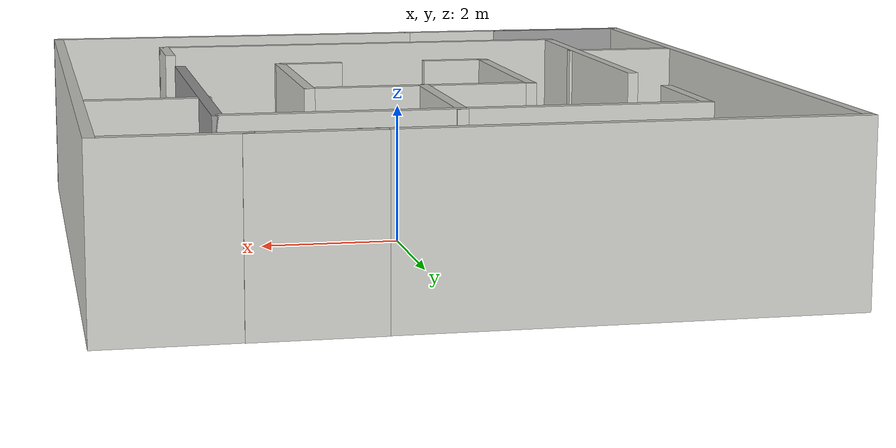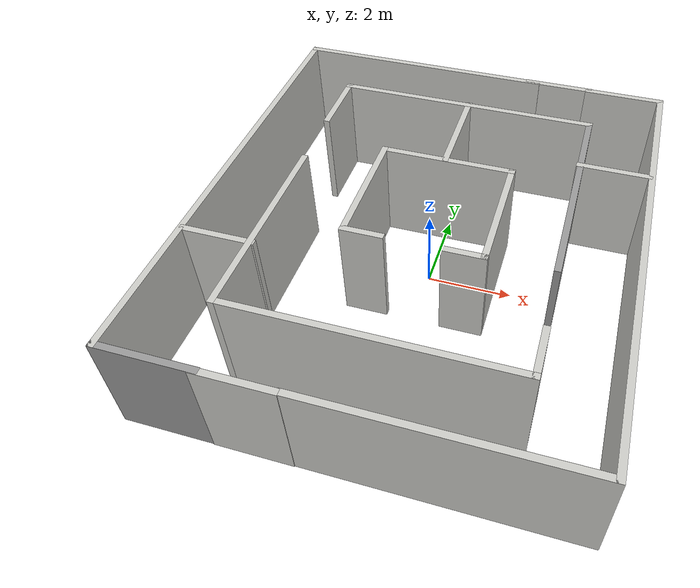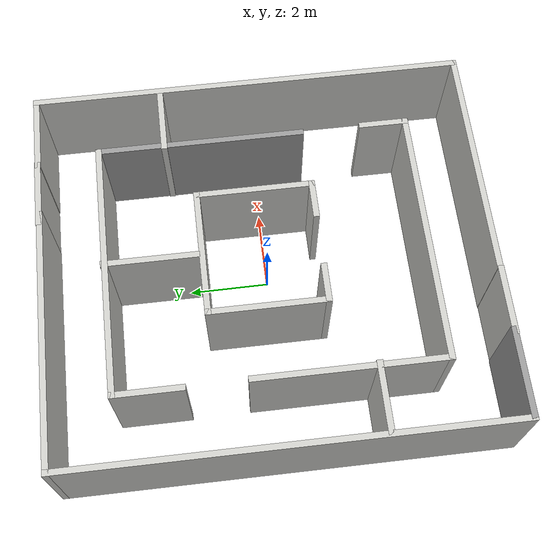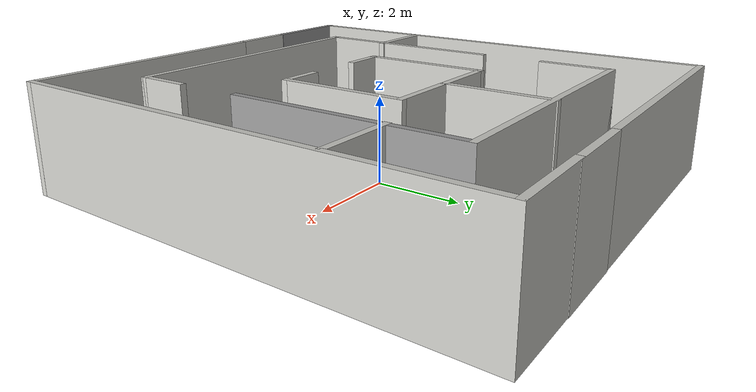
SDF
<?xml version='1.0'?>
<sdf version='1.7'>
  <model name='Maze'>
    <link name='Wall_13'>
      <pose>-1.73209 5.42018 0 0 -0 0</pose>
      <self_collide>0</self_collide>
      <enable_wind>0</enable_wind>
      <kinematic>0</kinematic>
      <visual name='Wall_13_Visual'>
        <pose>0 0 1.25 0 -0 0</pose>
        <geometry>
          <box>
            <size>6.5 0.15 2.5</size>
          </box>
        </geometry>
        <material>
          <script>
            <uri>file://media/materials/scripts/gazebo.material</uri>
            <name>Gazebo/CeilingTiled</name>
          </script>
          <ambient>1 1 1 1</ambient>
          <shader type='pixel'/>
        </material>
        <meta>
          <layer>0</layer>
        </meta>
        <transparency>0</transparency>
        <cast_shadows>1</cast_shadows>
      </visual>
      <collision name='Wall_13_Collision'>
        <laser_retro>0</laser_retro>
        <max_contacts>10</max_contacts>
        <pose>0 0 1.25 0 -0 0</pose>
        <geometry>
          <box>
            <size>6.5 0.15 2.5</size>
          </box>
        </geometry>
        <surface>
          <friction>
            <ode>
              <mu>1</mu>
              <mu2>1</mu2>
              <fdir1>0 0 0</fdir1>
              <slip1>0</slip1>
              <slip2>0</slip2>
            </ode>
            <torsional>
              <coefficient>1</coefficient>
              <patch_radius>0</patch_radius>
              <surface_radius>0</surface_radius>
              <use_patch_radius>1</use_patch_radius>
              <ode>
                <slip>0</slip>
              </ode>
            </torsional>
          </friction>
          <bounce>
            <restitution_coefficient>0</restitution_coefficient>
            <threshold>1e+06</threshold>
          </bounce>
          <contact>
            <collide_without_contact>0</collide_without_contact>
            <collide_without_contact_bitmask>1</collide_without_contact_bitmask>
            <collide_bitmask>1</collide_bitmask>
            <ode>
              <soft_cfm>0</soft_cfm>
              <soft_erp>0.2</soft_erp>
              <kp>1e+13</kp>
              <kd>1</kd>
              <max_vel>0.01</max_vel>
              <min_depth>0</min_depth>
            </ode>
            <bullet>
              <split_impulse>1</split_impulse>
              <split_impulse_penetration_threshold>-0.01</split_impulse_penetration_threshold>
              <soft_cfm>0</soft_cfm>
              <soft_erp>0.2</soft_erp>
              <kp>1e+13</kp>
              <kd>1</kd>
            </bullet>
          </contact>
        </surface>
      </collision>
    </link>
    <link name='Wall_15'>
      <pose>-4.90709 -0.004825 0 0 0 -1.5708</pose>
      <self_collide>0</self_collide>
      <enable_wind>0</enable_wind>
      <kinematic>0</kinematic>
      <visual name='Wall_15_Visual'>
        <pose>0 0 1.25 0 -0 0</pose>
        <geometry>
          <box>
            <size>11 0.15 2.5</size>
          </box>
        </geometry>
        <material>
          <script>
            <uri>file://media/materials/scripts/gazebo.material</uri>
            <name>Gazebo/CeilingTiled</name>
          </script>
          <ambient>1 1 1 1</ambient>
          <shader type='pixel'/>
        </material>
        <meta>
          <layer>0</layer>
        </meta>
        <transparency>0</transparency>
        <cast_shadows>1</cast_shadows>
      </visual>
      <collision name='Wall_15_Collision'>
        <laser_retro>0</laser_retro>
        <max_contacts>10</max_contacts>
        <pose>0 0 1.25 0 -0 0</pose>
        <geometry>
          <box>
            <size>11 0.15 2.5</size>
          </box>
        </geometry>
        <surface>
          <friction>
            <ode>
              <mu>1</mu>
              <mu2>1</mu2>
              <fdir1>0 0 0</fdir1>
              <slip1>0</slip1>
              <slip2>0</slip2>
            </ode>
            <torsional>
              <coefficient>1</coefficient>
              <patch_radius>0</patch_radius>
              <surface_radius>0</surface_radius>
              <use_patch_radius>1</use_patch_radius>
              <ode>
                <slip>0</slip>
              </ode>
            </torsional>
          </friction>
          <bounce>
            <restitution_coefficient>0</restitution_coefficient>
            <threshold>1e+06</threshold>
          </bounce>
          <contact>
            <collide_without_contact>0</collide_without_contact>
            <collide_without_contact_bitmask>1</collide_without_contact_bitmask>
            <collide_bitmask>1</collide_bitmask>
            <ode>
              <soft_cfm>0</soft_cfm>
              <soft_erp>0.2</soft_erp>
              <kp>1e+13</kp>
              <kd>1</kd>
              <max_vel>0.01</max_vel>
              <min_depth>0</min_depth>
            </ode>
            <bullet>
              <split_impulse>1</split_impulse>
              <split_impulse_penetration_threshold>-0.01</split_impulse_penetration_threshold>
              <soft_cfm>0</soft_cfm>
              <soft_erp>0.2</soft_erp>
              <kp>1e+13</kp>
              <kd>1</kd>
            </bullet>
          </contact>
        </surface>
      </collision>
    </link>
    <link name='Wall_16'>
      <pose>-3.85709 -5.42983 0 0 -0 0</pose>
      <self_collide>0</self_collide>
      <enable_wind>0</enable_wind>
      <kinematic>0</kinematic>
      <visual name='Wall_16_Visual'>
        <pose>0 0 1.25 0 -0 0</pose>
        <geometry>
          <box>
            <size>2.25 0.15 2.5</size>
          </box>
        </geometry>
        <material>
          <script>
            <uri>file://media/materials/scripts/gazebo.material</uri>
            <name>Gazebo/Grey</name>
          </script>
          <ambient>1 1 1 1</ambient>
          <shader type='pixel'/>
        </material>
        <meta>
          <layer>0</layer>
        </meta>
        <transparency>0</transparency>
        <cast_shadows>1</cast_shadows>
      </visual>
      <collision name='Wall_16_Collision'>
        <laser_retro>0</laser_retro>
        <max_contacts>10</max_contacts>
        <pose>0 0 1.25 0 -0 0</pose>
        <geometry>
          <box>
            <size>2.25 0.15 2.5</size>
          </box>
        </geometry>
        <surface>
          <friction>
            <ode>
              <mu>1</mu>
              <mu2>1</mu2>
              <fdir1>0 0 0</fdir1>
              <slip1>0</slip1>
              <slip2>0</slip2>
            </ode>
            <torsional>
              <coefficient>1</coefficient>
              <patch_radius>0</patch_radius>
              <surface_radius>0</surface_radius>
              <use_patch_radius>1</use_patch_radius>
              <ode>
                <slip>0</slip>
              </ode>
            </torsional>
          </friction>
          <bounce>
            <restitution_coefficient>0</restitution_coefficient>
            <threshold>1e+06</threshold>
          </bounce>
          <contact>
            <collide_without_contact>0</collide_without_contact>
            <collide_without_contact_bitmask>1</collide_without_contact_bitmask>
            <collide_bitmask>1</collide_bitmask>
            <ode>
              <soft_cfm>0</soft_cfm>
              <soft_erp>0.2</soft_erp>
              <kp>1e+13</kp>
              <kd>1</kd>
              <max_vel>0.01</max_vel>
              <min_depth>0</min_depth>
            </ode>
            <bullet>
              <split_impulse>1</split_impulse>
              <split_impulse_penetration_threshold>-0.01</split_impulse_penetration_threshold>
              <soft_cfm>0</soft_cfm>
              <soft_erp>0.2</soft_erp>
              <kp>1e+13</kp>
              <kd>1</kd>
            </bullet>
          </contact>
        </surface>
      </collision>
    </link>
    <link name='Wall_20'>
      <pose>3.74088 5.42018 0 0 -0 0</pose>
      <self_collide>0</self_collide>
      <enable_wind>0</enable_wind>
      <kinematic>0</kinematic>
      <visual name='Wall_20_Visual'>
        <pose>0 0 1.25 0 -0 0</pose>
        <geometry>
          <box>
            <size>2 0.15 2.5</size>
          </box>
        </geometry>
        <material>
          <script>
            <uri>file://media/materials/scripts/gazebo.material</uri>
            <name>Gazebo/CeilingTiled</name>
          </script>
          <ambient>1 1 1 1</ambient>
          <shader type='pixel'/>
        </material>
        <meta>
          <layer>0</layer>
        </meta>
        <transparency>0</transparency>
        <cast_shadows>1</cast_shadows>
      </visual>
      <collision name='Wall_20_Collision'>
        <laser_retro>0</laser_retro>
        <max_contacts>10</max_contacts>
        <pose>0 0 1.25 0 -0 0</pose>
        <geometry>
          <box>
            <size>2 0.15 2.5</size>
          </box>
        </geometry>
        <surface>
          <friction>
            <ode>
              <mu>1</mu>
              <mu2>1</mu2>
              <fdir1>0 0 0</fdir1>
              <slip1>0</slip1>
              <slip2>0</slip2>
            </ode>
            <torsional>
              <coefficient>1</coefficient>
              <patch_radius>0</patch_radius>
              <surface_radius>0</surface_radius>
              <use_patch_radius>1</use_patch_radius>
              <ode>
                <slip>0</slip>
              </ode>
            </torsional>
          </friction>
          <bounce>
            <restitution_coefficient>0</restitution_coefficient>
            <threshold>1e+06</threshold>
          </bounce>
          <contact>
            <collide_without_contact>0</collide_without_contact>
            <collide_without_contact_bitmask>1</collide_without_contact_bitmask>
            <collide_bitmask>1</collide_bitmask>
            <ode>
              <soft_cfm>0</soft_cfm>
              <soft_erp>0.2</soft_erp>
              <kp>1e+13</kp>
              <kd>1</kd>
              <max_vel>0.01</max_vel>
              <min_depth>0</min_depth>
            </ode>
            <bullet>
              <split_impulse>1</split_impulse>
              <split_impulse_penetration_threshold>-0.01</split_impulse_penetration_threshold>
              <soft_cfm>0</soft_cfm>
              <soft_erp>0.2</soft_erp>
              <kp>1e+13</kp>
              <kd>1</kd>
            </bullet>
          </contact>
        </surface>
      </collision>
    </link>
    <link name='Wall_21'>
      <pose>4.66588 -0.004825 0 0 0 -1.5708</pose>
      <self_collide>0</self_collide>
      <enable_wind>0</enable_wind>
      <kinematic>0</kinematic>
      <visual name='Wall_21_Visual'>
        <pose>0 0 1.25 0 -0 0</pose>
        <geometry>
          <box>
            <size>11 0.15 2.5</size>
          </box>
        </geometry>
        <material>
          <script>
            <uri>file://media/materials/scripts/gazebo.material</uri>
            <name>Gazebo/CeilingTiled</name>
          </script>
          <ambient>1 1 1 1</ambient>
          <shader type='pixel'/>
        </material>
        <meta>
          <layer>0</layer>
        </meta>
        <transparency>0</transparency>
        <cast_shadows>1</cast_shadows>
      </visual>
      <collision name='Wall_21_Collision'>
        <laser_retro>0</laser_retro>
        <max_contacts>10</max_contacts>
        <pose>0 0 1.25 0 -0 0</pose>
        <geometry>
          <box>
            <size>11 0.15 2.5</size>
          </box>
        </geometry>
        <surface>
          <friction>
            <ode>
              <mu>1</mu>
              <mu2>1</mu2>
              <fdir1>0 0 0</fdir1>
              <slip1>0</slip1>
              <slip2>0</slip2>
            </ode>
            <torsional>
              <coefficient>1</coefficient>
              <patch_radius>0</patch_radius>
              <surface_radius>0</surface_radius>
              <use_patch_radius>1</use_patch_radius>
              <ode>
                <slip>0</slip>
              </ode>
            </torsional>
          </friction>
          <bounce>
            <restitution_coefficient>0</restitution_coefficient>
            <threshold>1e+06</threshold>
          </bounce>
          <contact>
            <collide_without_contact>0</collide_without_contact>
            <collide_without_contact_bitmask>1</collide_without_contact_bitmask>
            <collide_bitmask>1</collide_bitmask>
            <ode>
              <soft_cfm>0</soft_cfm>
              <soft_erp>0.2</soft_erp>
              <kp>1e+13</kp>
              <kd>1</kd>
              <max_vel>0.01</max_vel>
              <min_depth>0</min_depth>
            </ode>
            <bullet>
              <split_impulse>1</split_impulse>
              <split_impulse_penetration_threshold>-0.01</split_impulse_penetration_threshold>
              <soft_cfm>0</soft_cfm>
              <soft_erp>0.2</soft_erp>
              <kp>1e+13</kp>
              <kd>1</kd>
            </bullet>
          </contact>
        </surface>
      </collision>
    </link>
    <link name='Wall_22'>
      <pose>1.74088 -5.42983 0 0 -0 3.14159</pose>
      <self_collide>0</self_collide>
      <enable_wind>0</enable_wind>
      <kinematic>0</kinematic>
      <visual name='Wall_22_Visual'>
        <pose>0 0 1.25 0 -0 0</pose>
        <geometry>
          <box>
            <size>6 0.15 2.5</size>
          </box>
        </geometry>
        <material>
          <script>
            <uri>file://media/materials/scripts/gazebo.material</uri>
            <name>Gazebo/CeilingTiled</name>
          </script>
          <ambient>1 1 1 1</ambient>
          <shader type='pixel'/>
        </material>
        <meta>
          <layer>0</layer>
        </meta>
        <transparency>0</transparency>
        <cast_shadows>1</cast_shadows>
      </visual>
      <collision name='Wall_22_Collision'>
        <laser_retro>0</laser_retro>
        <max_contacts>10</max_contacts>
        <pose>0 0 1.25 0 -0 0</pose>
        <geometry>
          <box>
            <size>6 0.15 2.5</size>
          </box>
        </geometry>
        <surface>
          <friction>
            <ode>
              <mu>1</mu>
              <mu2>1</mu2>
              <fdir1>0 0 0</fdir1>
              <slip1>0</slip1>
              <slip2>0</slip2>
            </ode>
            <torsional>
              <coefficient>1</coefficient>
              <patch_radius>0</patch_radius>
              <surface_radius>0</surface_radius>
              <use_patch_radius>1</use_patch_radius>
              <ode>
                <slip>0</slip>
              </ode>
            </torsional>
          </friction>
          <bounce>
            <restitution_coefficient>0</restitution_coefficient>
            <threshold>1e+06</threshold>
          </bounce>
          <contact>
            <collide_without_contact>0</collide_without_contact>
            <collide_without_contact_bitmask>1</collide_without_contact_bitmask>
            <collide_bitmask>1</collide_bitmask>
            <ode>
              <soft_cfm>0</soft_cfm>
              <soft_erp>0.2</soft_erp>
              <kp>1e+13</kp>
              <kd>1</kd>
              <max_vel>0.01</max_vel>
              <min_depth>0</min_depth>
            </ode>
            <bullet>
              <split_impulse>1</split_impulse>
              <split_impulse_penetration_threshold>-0.01</split_impulse_penetration_threshold>
              <soft_cfm>0</soft_cfm>
              <soft_erp>0.2</soft_erp>
              <kp>1e+13</kp>
              <kd>1</kd>
            </bullet>
          </contact>
        </surface>
      </collision>
    </link>
    <link name='Wall_26'>
      <pose>3.0485 -3.31803 0 0 0 -1.5708</pose>
      <self_collide>0</self_collide>
      <enable_wind>0</enable_wind>
      <kinematic>0</kinematic>
      <visual name='Wall_26_Visual'>
        <pose>0 0 1.25 0 -0 0</pose>
        <geometry>
          <box>
            <size>1.25 0.15 2.5</size>
          </box>
        </geometry>
        <material>
          <script>
            <uri>file://media/materials/scripts/gazebo.material</uri>
            <name>Gazebo/CeilingTiled</name>
          </script>
          <ambient>1 1 1 1</ambient>
          <shader type='pixel'/>
        </material>
        <meta>
          <layer>0</layer>
        </meta>
        <transparency>0</transparency>
        <cast_shadows>1</cast_shadows>
      </visual>
      <collision name='Wall_26_Collision'>
        <laser_retro>0</laser_retro>
        <max_contacts>10</max_contacts>
        <pose>0 0 1.25 0 -0 0</pose>
        <geometry>
          <box>
            <size>1.25 0.15 2.5</size>
          </box>
        </geometry>
        <surface>
          <friction>
            <ode>
              <mu>1</mu>
              <mu2>1</mu2>
              <fdir1>0 0 0</fdir1>
              <slip1>0</slip1>
              <slip2>0</slip2>
            </ode>
            <torsional>
              <coefficient>1</coefficient>
              <patch_radius>0</patch_radius>
              <surface_radius>0</surface_radius>
              <use_patch_radius>1</use_patch_radius>
              <ode>
                <slip>0</slip>
              </ode>
            </torsional>
          </friction>
          <bounce>
            <restitution_coefficient>0</restitution_coefficient>
            <threshold>1e+06</threshold>
          </bounce>
          <contact>
            <collide_without_contact>0</collide_without_contact>
            <collide_without_contact_bitmask>1</collide_without_contact_bitmask>
            <collide_bitmask>1</collide_bitmask>
            <ode>
              <soft_cfm>0</soft_cfm>
              <soft_erp>0.2</soft_erp>
              <kp>1e+13</kp>
              <kd>1</kd>
              <max_vel>0.01</max_vel>
              <min_depth>0</min_depth>
            </ode>
            <bullet>
              <split_impulse>1</split_impulse>
              <split_impulse_penetration_threshold>-0.01</split_impulse_penetration_threshold>
              <soft_cfm>0</soft_cfm>
              <soft_erp>0.2</soft_erp>
              <kp>1e+13</kp>
              <kd>1</kd>
            </bullet>
          </contact>
        </surface>
      </collision>
    </link>
    <link name='Wall_27'>
      <pose>-0.126502 -3.86803 0 0 -0 3.14159</pose>
      <self_collide>0</self_collide>
      <enable_wind>0</enable_wind>
      <kinematic>0</kinematic>
      <visual name='Wall_27_Visual'>
        <pose>0 0 1.25 0 -0 0</pose>
        <geometry>
          <box>
            <size>6.5 0.15 2.5</size>
          </box>
        </geometry>
        <material>
          <script>
            <uri>file://media/materials/scripts/gazebo.material</uri>
            <name>Gazebo/CeilingTiled</name>
          </script>
          <ambient>1 1 1 1</ambient>
          <shader type='pixel'/>
        </material>
        <meta>
          <layer>0</layer>
        </meta>
        <transparency>0</transparency>
        <cast_shadows>1</cast_shadows>
      </visual>
      <collision name='Wall_27_Collision'>
        <laser_retro>0</laser_retro>
        <max_contacts>10</max_contacts>
        <pose>0 0 1.25 0 -0 0</pose>
        <geometry>
          <box>
            <size>6.5 0.15 2.5</size>
          </box>
        </geometry>
        <surface>
          <friction>
            <ode>
              <mu>1</mu>
              <mu2>1</mu2>
              <fdir1>0 0 0</fdir1>
              <slip1>0</slip1>
              <slip2>0</slip2>
            </ode>
            <torsional>
              <coefficient>1</coefficient>
              <patch_radius>0</patch_radius>
              <surface_radius>0</surface_radius>
              <use_patch_radius>1</use_patch_radius>
              <ode>
                <slip>0</slip>
              </ode>
            </torsional>
          </friction>
          <bounce>
            <restitution_coefficient>0</restitution_coefficient>
            <threshold>1e+06</threshold>
          </bounce>
          <contact>
            <collide_without_contact>0</collide_without_contact>
            <collide_without_contact_bitmask>1</collide_without_contact_bitmask>
            <collide_bitmask>1</collide_bitmask>
            <ode>
              <soft_cfm>0</soft_cfm>
              <soft_erp>0.2</soft_erp>
              <kp>1e+13</kp>
              <kd>1</kd>
              <max_vel>0.01</max_vel>
              <min_depth>0</min_depth>
            </ode>
            <bullet>
              <split_impulse>1</split_impulse>
              <split_impulse_penetration_threshold>-0.01</split_impulse_penetration_threshold>
              <soft_cfm>0</soft_cfm>
              <soft_erp>0.2</soft_erp>
              <kp>1e+13</kp>
              <kd>1</kd>
            </bullet>
          </contact>
        </surface>
      </collision>
    </link>
    <link name='Wall_28'>
      <pose>-3.3015 -1.56803 0 0 -0 1.5708</pose>
      <self_collide>0</self_collide>
      <enable_wind>0</enable_wind>
      <kinematic>0</kinematic>
      <visual name='Wall_28_Visual'>
        <pose>0 0 1.25 0 -0 0</pose>
        <geometry>
          <box>
            <size>4.75 0.15 2.5</size>
          </box>
        </geometry>
        <material>
          <script>
            <uri>file://media/materials/scripts/gazebo.material</uri>
            <name>Gazebo/CeilingTiled</name>
          </script>
          <ambient>1 1 1 1</ambient>
          <shader type='pixel'/>
        </material>
        <meta>
          <layer>0</layer>
        </meta>
        <transparency>0</transparency>
        <cast_shadows>1</cast_shadows>
      </visual>
      <collision name='Wall_28_Collision'>
        <laser_retro>0</laser_retro>
        <max_contacts>10</max_contacts>
        <pose>0 0 1.25 0 -0 0</pose>
        <geometry>
          <box>
            <size>4.75 0.15 2.5</size>
          </box>
        </geometry>
        <surface>
          <friction>
            <ode>
              <mu>1</mu>
              <mu2>1</mu2>
              <fdir1>0 0 0</fdir1>
              <slip1>0</slip1>
              <slip2>0</slip2>
            </ode>
            <torsional>
              <coefficient>1</coefficient>
              <patch_radius>0</patch_radius>
              <surface_radius>0</surface_radius>
              <use_patch_radius>1</use_patch_radius>
              <ode>
                <slip>0</slip>
              </ode>
            </torsional>
          </friction>
          <bounce>
            <restitution_coefficient>0</restitution_coefficient>
            <threshold>1e+06</threshold>
          </bounce>
          <contact>
            <collide_without_contact>0</collide_without_contact>
            <collide_without_contact_bitmask>1</collide_without_contact_bitmask>
            <collide_bitmask>1</collide_bitmask>
            <ode>
              <soft_cfm>0</soft_cfm>
              <soft_erp>0.2</soft_erp>
              <kp>1e+13</kp>
              <kd>1</kd>
              <max_vel>0.01</max_vel>
              <min_depth>0</min_depth>
            </ode>
            <bullet>
              <split_impulse>1</split_impulse>
              <split_impulse_penetration_threshold>-0.01</split_impulse_penetration_threshold>
              <soft_cfm>0</soft_cfm>
              <soft_erp>0.2</soft_erp>
              <kp>1e+13</kp>
              <kd>1</kd>
            </bullet>
          </contact>
        </surface>
      </collision>
    </link>
    <link name='Wall_30'>
      <pose>-3.32528 3.10307 0 0 -0 1.5708</pose>
      <self_collide>0</self_collide>
      <enable_wind>0</enable_wind>
      <kinematic>0</kinematic>
      <visual name='Wall_30_Visual'>
        <pose>0 0 1.25 0 -0 0</pose>
        <geometry>
          <box>
            <size>1.75 0.15 2.5</size>
          </box>
        </geometry>
        <material>
          <script>
            <uri>file://media/materials/scripts/gazebo.material</uri>
            <name>Gazebo/CeilingTiled</name>
          </script>
          <ambient>1 1 1 1</ambient>
          <shader type='pixel'/>
        </material>
        <meta>
          <layer>0</layer>
        </meta>
        <transparency>0</transparency>
        <cast_shadows>1</cast_shadows>
      </visual>
      <collision name='Wall_30_Collision'>
        <laser_retro>0</laser_retro>
        <max_contacts>10</max_contacts>
        <pose>0 0 1.25 0 -0 0</pose>
        <geometry>
          <box>
            <size>1.75 0.15 2.5</size>
          </box>
        </geometry>
        <surface>
          <friction>
            <ode>
              <mu>1</mu>
              <mu2>1</mu2>
              <fdir1>0 0 0</fdir1>
              <slip1>0</slip1>
              <slip2>0</slip2>
            </ode>
            <torsional>
              <coefficient>1</coefficient>
              <patch_radius>0</patch_radius>
              <surface_radius>0</surface_radius>
              <use_patch_radius>1</use_patch_radius>
              <ode>
                <slip>0</slip>
              </ode>
            </torsional>
          </friction>
          <bounce>
            <restitution_coefficient>0</restitution_coefficient>
            <threshold>1e+06</threshold>
          </bounce>
          <contact>
            <collide_without_contact>0</collide_without_contact>
            <collide_without_contact_bitmask>1</collide_without_contact_bitmask>
            <collide_bitmask>1</collide_bitmask>
            <ode>
              <soft_cfm>0</soft_cfm>
              <soft_erp>0.2</soft_erp>
              <kp>1e+13</kp>
              <kd>1</kd>
              <max_vel>0.01</max_vel>
              <min_depth>0</min_depth>
            </ode>
            <bullet>
              <split_impulse>1</split_impulse>
              <split_impulse_penetration_threshold>-0.01</split_impulse_penetration_threshold>
              <soft_cfm>0</soft_cfm>
              <soft_erp>0.2</soft_erp>
              <kp>1e+13</kp>
              <kd>1</kd>
            </bullet>
          </contact>
        </surface>
      </collision>
    </link>
    <link name='Wall_31'>
      <pose>-0.150278 3.90307 0 0 -0 0</pose>
      <self_collide>0</self_collide>
      <enable_wind>0</enable_wind>
      <kinematic>0</kinematic>
      <visual name='Wall_31_Visual'>
        <pose>0 0 1.25 0 -0 0</pose>
        <geometry>
          <box>
            <size>6.5 0.15 2.5</size>
          </box>
        </geometry>
        <material>
          <script>
            <uri>file://media/materials/scripts/gazebo.material</uri>
            <name>Gazebo/CeilingTiled</name>
          </script>
          <ambient>1 1 1 1</ambient>
          <shader type='pixel'/>
        </material>
        <meta>
          <layer>0</layer>
        </meta>
        <transparency>0</transparency>
        <cast_shadows>1</cast_shadows>
      </visual>
      <collision name='Wall_31_Collision'>
        <laser_retro>0</laser_retro>
        <max_contacts>10</max_contacts>
        <pose>0 0 1.25 0 -0 0</pose>
        <geometry>
          <box>
            <size>6.5 0.15 2.5</size>
          </box>
        </geometry>
        <surface>
          <friction>
            <ode>
              <mu>1</mu>
              <mu2>1</mu2>
              <fdir1>0 0 0</fdir1>
              <slip1>0</slip1>
              <slip2>0</slip2>
            </ode>
            <torsional>
              <coefficient>1</coefficient>
              <patch_radius>0</patch_radius>
              <surface_radius>0</surface_radius>
              <use_patch_radius>1</use_patch_radius>
              <ode>
                <slip>0</slip>
              </ode>
            </torsional>
          </friction>
          <bounce>
            <restitution_coefficient>0</restitution_coefficient>
            <threshold>1e+06</threshold>
          </bounce>
          <contact>
            <collide_without_contact>0</collide_without_contact>
            <collide_without_contact_bitmask>1</collide_without_contact_bitmask>
            <collide_bitmask>1</collide_bitmask>
            <ode>
              <soft_cfm>0</soft_cfm>
              <soft_erp>0.2</soft_erp>
              <kp>1e+13</kp>
              <kd>1</kd>
              <max_vel>0.01</max_vel>
              <min_depth>0</min_depth>
            </ode>
            <bullet>
              <split_impulse>1</split_impulse>
              <split_impulse_penetration_threshold>-0.01</split_impulse_penetration_threshold>
              <soft_cfm>0</soft_cfm>
              <soft_erp>0.2</soft_erp>
              <kp>1e+13</kp>
              <kd>1</kd>
            </bullet>
          </contact>
        </surface>
      </collision>
    </link>
    <link name='Wall_32'>
      <pose>3.02472 1.35307 0 0 0 -1.5708</pose>
      <self_collide>0</self_collide>
      <enable_wind>0</enable_wind>
      <kinematic>0</kinematic>
      <visual name='Wall_32_Visual'>
        <pose>0 0 1.25 0 -0 0</pose>
        <geometry>
          <box>
            <size>5.25 0.15 2.5</size>
          </box>
        </geometry>
        <material>
          <script>
            <uri>file://media/materials/scripts/gazebo.material</uri>
            <name>Gazebo/Grey</name>
          </script>
          <ambient>1 1 1 1</ambient>
          <shader type='pixel'/>
        </material>
        <meta>
          <layer>0</layer>
        </meta>
        <transparency>0</transparency>
        <cast_shadows>1</cast_shadows>
      </visual>
      <collision name='Wall_32_Collision'>
        <laser_retro>0</laser_retro>
        <max_contacts>10</max_contacts>
        <pose>0 0 1.25 0 -0 0</pose>
        <geometry>
          <box>
            <size>5.25 0.15 2.5</size>
          </box>
        </geometry>
        <surface>
          <friction>
            <ode>
              <mu>1</mu>
              <mu2>1</mu2>
              <fdir1>0 0 0</fdir1>
              <slip1>0</slip1>
              <slip2>0</slip2>
            </ode>
            <torsional>
              <coefficient>1</coefficient>
              <patch_radius>0</patch_radius>
              <surface_radius>0</surface_radius>
              <use_patch_radius>1</use_patch_radius>
              <ode>
                <slip>0</slip>
              </ode>
            </torsional>
          </friction>
          <bounce>
            <restitution_coefficient>0</restitution_coefficient>
            <threshold>1e+06</threshold>
          </bounce>
          <contact>
            <collide_without_contact>0</collide_without_contact>
            <collide_without_contact_bitmask>1</collide_without_contact_bitmask>
            <collide_bitmask>1</collide_bitmask>
            <ode>
              <soft_cfm>0</soft_cfm>
              <soft_erp>0.2</soft_erp>
              <kp>1e+13</kp>
              <kd>1</kd>
              <max_vel>0.01</max_vel>
              <min_depth>0</min_depth>
            </ode>
            <bullet>
              <split_impulse>1</split_impulse>
              <split_impulse_penetration_threshold>-0.01</split_impulse_penetration_threshold>
              <soft_cfm>0</soft_cfm>
              <soft_erp>0.2</soft_erp>
              <kp>1e+13</kp>
              <kd>1</kd>
            </bullet>
          </contact>
        </surface>
      </collision>
    </link>
    <link name='Wall_34'>
      <pose>-4.06057 -2.20975 0 0 -0 0</pose>
      <self_collide>0</self_collide>
      <enable_wind>0</enable_wind>
      <kinematic>0</kinematic>
      <visual name='Wall_34_Visual'>
        <pose>0 0 1.25 0 -0 0</pose>
        <geometry>
          <box>
            <size>1.75 0.15 2.5</size>
          </box>
        </geometry>
        <material>
          <script>
            <uri>file://media/materials/scripts/gazebo.material</uri>
            <name>Gazebo/CeilingTiled</name>
          </script>
          <ambient>1 1 1 1</ambient>
          <shader type='pixel'/>
        </material>
        <meta>
          <layer>0</layer>
        </meta>
        <transparency>0</transparency>
        <cast_shadows>1</cast_shadows>
      </visual>
      <collision name='Wall_34_Collision'>
        <laser_retro>0</laser_retro>
        <max_contacts>10</max_contacts>
        <pose>0 0 1.25 0 -0 0</pose>
        <geometry>
          <box>
            <size>1.75 0.15 2.5</size>
          </box>
        </geometry>
        <surface>
          <friction>
            <ode>
              <mu>1</mu>
              <mu2>1</mu2>
              <fdir1>0 0 0</fdir1>
              <slip1>0</slip1>
              <slip2>0</slip2>
            </ode>
            <torsional>
              <coefficient>1</coefficient>
              <patch_radius>0</patch_radius>
              <surface_radius>0</surface_radius>
              <use_patch_radius>1</use_patch_radius>
              <ode>
                <slip>0</slip>
              </ode>
            </torsional>
          </friction>
          <bounce>
            <restitution_coefficient>0</restitution_coefficient>
            <threshold>1e+06</threshold>
          </bounce>
          <contact>
            <collide_without_contact>0</collide_without_contact>
            <collide_without_contact_bitmask>1</collide_without_contact_bitmask>
            <collide_bitmask>1</collide_bitmask>
            <ode>
              <soft_cfm>0</soft_cfm>
              <soft_erp>0.2</soft_erp>
              <kp>1e+13</kp>
              <kd>1</kd>
              <max_vel>0.01</max_vel>
              <min_depth>0</min_depth>
            </ode>
            <bullet>
              <split_impulse>1</split_impulse>
              <split_impulse_penetration_threshold>-0.01</split_impulse_penetration_threshold>
              <soft_cfm>0</soft_cfm>
              <soft_erp>0.2</soft_erp>
              <kp>1e+13</kp>
              <kd>1</kd>
            </bullet>
          </contact>
        </surface>
      </collision>
    </link>
    <link name='Wall_34_clone'>
      <pose>-2.06153 -5.44185 0 0 -0 0</pose>
      <self_collide>0</self_collide>
      <enable_wind>0</enable_wind>
      <kinematic>0</kinematic>
      <visual name='Wall_34_Visual'>
        <pose>0 0 1.25 0 -0 0</pose>
        <geometry>
          <box>
            <size>1.75 0.15 2.5</size>
          </box>
        </geometry>
        <material>
          <script>
            <uri>file://media/materials/scripts/gazebo.material</uri>
            <name>Gazebo/CeilingTiled</name>
          </script>
          <ambient>1 1 1 1</ambient>
          <shader type='pixel'/>
        </material>
        <meta>
          <layer>0</layer>
        </meta>
        <transparency>0</transparency>
        <cast_shadows>1</cast_shadows>
      </visual>
      <collision name='Wall_34_Collision'>
        <laser_retro>0</laser_retro>
        <max_contacts>10</max_contacts>
        <pose>0 0 1.25 0 -0 0</pose>
        <geometry>
          <box>
            <size>1.75 0.15 2.5</size>
          </box>
        </geometry>
        <surface>
          <friction>
            <ode>
              <mu>1</mu>
              <mu2>1</mu2>
              <fdir1>0 0 0</fdir1>
              <slip1>0</slip1>
              <slip2>0</slip2>
            </ode>
            <torsional>
              <coefficient>1</coefficient>
              <patch_radius>0</patch_radius>
              <surface_radius>0</surface_radius>
              <use_patch_radius>1</use_patch_radius>
              <ode>
                <slip>0</slip>
              </ode>
            </torsional>
          </friction>
          <bounce>
            <restitution_coefficient>0</restitution_coefficient>
            <threshold>1e+06</threshold>
          </bounce>
          <contact>
            <collide_without_contact>0</collide_without_contact>
            <collide_without_contact_bitmask>1</collide_without_contact_bitmask>
            <collide_bitmask>1</collide_bitmask>
            <ode>
              <soft_cfm>0</soft_cfm>
              <soft_erp>0.2</soft_erp>
              <kp>1e+13</kp>
              <kd>1</kd>
              <max_vel>0.01</max_vel>
              <min_depth>0</min_depth>
            </ode>
            <bullet>
              <split_impulse>1</split_impulse>
              <split_impulse_penetration_threshold>-0.01</split_impulse_penetration_threshold>
              <soft_cfm>0</soft_cfm>
              <soft_erp>0.2</soft_erp>
              <kp>1e+13</kp>
              <kd>1</kd>
            </bullet>
          </contact>
        </surface>
      </collision>
    </link>
    <link name='Wall_34_clone_0'>
      <pose>2.02378 5.43214 0 0 -0 0</pose>
      <self_collide>0</self_collide>
      <enable_wind>0</enable_wind>
      <kinematic>0</kinematic>
      <visual name='Wall_34_Visual'>
        <pose>0 0 1.25 0 -0 0</pose>
        <geometry>
          <box>
            <size>1.75 0.15 2.5</size>
          </box>
        </geometry>
        <material>
          <script>
            <uri>file://media/materials/scripts/gazebo.material</uri>
            <name>Gazebo/CeilingTiled</name>
          </script>
          <ambient>1 1 1 1</ambient>
          <shader type='pixel'/>
        </material>
        <meta>
          <layer>0</layer>
        </meta>
        <transparency>0</transparency>
        <cast_shadows>1</cast_shadows>
      </visual>
      <collision name='Wall_34_Collision'>
        <laser_retro>0</laser_retro>
        <max_contacts>10</max_contacts>
        <pose>0 0 1.25 0 -0 0</pose>
        <geometry>
          <box>
            <size>1.75 0.15 2.5</size>
          </box>
        </geometry>
        <surface>
          <friction>
            <ode>
              <mu>1</mu>
              <mu2>1</mu2>
              <fdir1>0 0 0</fdir1>
              <slip1>0</slip1>
              <slip2>0</slip2>
            </ode>
            <torsional>
              <coefficient>1</coefficient>
              <patch_radius>0</patch_radius>
              <surface_radius>0</surface_radius>
              <use_patch_radius>1</use_patch_radius>
              <ode>
                <slip>0</slip>
              </ode>
            </torsional>
          </friction>
          <bounce>
            <restitution_coefficient>0</restitution_coefficient>
            <threshold>1e+06</threshold>
          </bounce>
          <contact>
            <collide_without_contact>0</collide_without_contact>
            <collide_without_contact_bitmask>1</collide_without_contact_bitmask>
            <collide_bitmask>1</collide_bitmask>
            <ode>
              <soft_cfm>0</soft_cfm>
              <soft_erp>0.2</soft_erp>
              <kp>1e+13</kp>
              <kd>1</kd>
              <max_vel>0.01</max_vel>
              <min_depth>0</min_depth>
            </ode>
            <bullet>
              <split_impulse>1</split_impulse>
              <split_impulse_penetration_threshold>-0.01</split_impulse_penetration_threshold>
              <soft_cfm>0</soft_cfm>
              <soft_erp>0.2</soft_erp>
              <kp>1e+13</kp>
              <kd>1</kd>
            </bullet>
          </contact>
        </surface>
      </collision>
    </link>
    <link name='Wall_36'>
      <pose>3.80197 2.25655 0 0 -0 0</pose>
      <self_collide>0</self_collide>
      <enable_wind>0</enable_wind>
      <kinematic>0</kinematic>
      <visual name='Wall_36_Visual'>
        <pose>0 0 1.25 0 -0 0</pose>
        <geometry>
          <box>
            <size>1.75 0.15 2.5</size>
          </box>
        </geometry>
        <material>
          <script>
            <uri>file://media/materials/scripts/gazebo.material</uri>
            <name>Gazebo/CeilingTiled</name>
          </script>
          <ambient>1 1 1 1</ambient>
          <shader type='pixel'/>
        </material>
        <meta>
          <layer>0</layer>
        </meta>
        <transparency>0</transparency>
        <cast_shadows>1</cast_shadows>
      </visual>
      <collision name='Wall_36_Collision'>
        <laser_retro>0</laser_retro>
        <max_contacts>10</max_contacts>
        <pose>0 0 1.25 0 -0 0</pose>
        <geometry>
          <box>
            <size>1.75 0.15 2.5</size>
          </box>
        </geometry>
        <surface>
          <friction>
            <ode>
              <mu>1</mu>
              <mu2>1</mu2>
              <fdir1>0 0 0</fdir1>
              <slip1>0</slip1>
              <slip2>0</slip2>
            </ode>
            <torsional>
              <coefficient>1</coefficient>
              <patch_radius>0</patch_radius>
              <surface_radius>0</surface_radius>
              <use_patch_radius>1</use_patch_radius>
              <ode>
                <slip>0</slip>
              </ode>
            </torsional>
          </friction>
          <bounce>
            <restitution_coefficient>0</restitution_coefficient>
            <threshold>1e+06</threshold>
          </bounce>
          <contact>
            <collide_without_contact>0</collide_without_contact>
            <collide_without_contact_bitmask>1</collide_without_contact_bitmask>
            <collide_bitmask>1</collide_bitmask>
            <ode>
              <soft_cfm>0</soft_cfm>
              <soft_erp>0.2</soft_erp>
              <kp>1e+13</kp>
              <kd>1</kd>
              <max_vel>0.01</max_vel>
              <min_depth>0</min_depth>
            </ode>
            <bullet>
              <split_impulse>1</split_impulse>
              <split_impulse_penetration_threshold>-0.01</split_impulse_penetration_threshold>
              <soft_cfm>0</soft_cfm>
              <soft_erp>0.2</soft_erp>
              <kp>1e+13</kp>
              <kd>1</kd>
            </bullet>
          </contact>
        </surface>
      </collision>
    </link>
    <link name='Wall_38'>
      <pose>-1.14494 -1.27927 0 0 -0 3.14159</pose>
      <self_collide>0</self_collide>
      <enable_wind>0</enable_wind>
      <kinematic>0</kinematic>
      <visual name='Wall_38_Visual'>
        <pose>0 0 1.25 0 -0 0</pose>
        <geometry>
          <box>
            <size>1 0.15 2.5</size>
          </box>
        </geometry>
        <material>
          <script>
            <uri>file://media/materials/scripts/gazebo.material</uri>
            <name>Gazebo/CeilingTiled</name>
          </script>
          <ambient>1 1 1 1</ambient>
          <shader type='pixel'/>
        </material>
        <meta>
          <layer>0</layer>
        </meta>
        <transparency>0</transparency>
        <cast_shadows>1</cast_shadows>
      </visual>
      <collision name='Wall_38_Collision'>
        <laser_retro>0</laser_retro>
        <max_contacts>10</max_contacts>
        <pose>0 0 1.25 0 -0 0</pose>
        <geometry>
          <box>
            <size>1 0.15 2.5</size>
          </box>
        </geometry>
        <surface>
          <friction>
            <ode>
              <mu>1</mu>
              <mu2>1</mu2>
              <fdir1>0 0 0</fdir1>
              <slip1>0</slip1>
              <slip2>0</slip2>
            </ode>
            <torsional>
              <coefficient>1</coefficient>
              <patch_radius>0</patch_radius>
              <surface_radius>0</surface_radius>
              <use_patch_radius>1</use_patch_radius>
              <ode>
                <slip>0</slip>
              </ode>
            </torsional>
          </friction>
          <bounce>
            <restitution_coefficient>0</restitution_coefficient>
            <threshold>1e+06</threshold>
          </bounce>
          <contact>
            <collide_without_contact>0</collide_without_contact>
            <collide_without_contact_bitmask>1</collide_without_contact_bitmask>
            <collide_bitmask>1</collide_bitmask>
            <ode>
              <soft_cfm>0</soft_cfm>
              <soft_erp>0.2</soft_erp>
              <kp>1e+13</kp>
              <kd>1</kd>
              <max_vel>0.01</max_vel>
              <min_depth>0</min_depth>
            </ode>
            <bullet>
              <split_impulse>1</split_impulse>
              <split_impulse_penetration_threshold>-0.01</split_impulse_penetration_threshold>
              <soft_cfm>0</soft_cfm>
              <soft_erp>0.2</soft_erp>
              <kp>1e+13</kp>
              <kd>1</kd>
            </bullet>
          </contact>
        </surface>
      </collision>
    </link>
    <link name='Wall_39'>
      <pose>-1.56994 0.145732 0 0 -0 1.5708</pose>
      <self_collide>0</self_collide>
      <enable_wind>0</enable_wind>
      <kinematic>0</kinematic>
      <visual name='Wall_39_Visual'>
        <pose>0 0 1.25 0 -0 0</pose>
        <geometry>
          <box>
            <size>3 0.15 2.5</size>
          </box>
        </geometry>
        <material>
          <script>
            <uri>file://media/materials/scripts/gazebo.material</uri>
            <name>Gazebo/CeilingTiled</name>
          </script>
          <ambient>1 1 1 1</ambient>
          <shader type='pixel'/>
        </material>
        <meta>
          <layer>0</layer>
        </meta>
        <transparency>0</transparency>
        <cast_shadows>1</cast_shadows>
      </visual>
      <collision name='Wall_39_Collision'>
        <laser_retro>0</laser_retro>
        <max_contacts>10</max_contacts>
        <pose>0 0 1.25 0 -0 0</pose>
        <geometry>
          <box>
            <size>3 0.15 2.5</size>
          </box>
        </geometry>
        <surface>
          <friction>
            <ode>
              <mu>1</mu>
              <mu2>1</mu2>
              <fdir1>0 0 0</fdir1>
              <slip1>0</slip1>
              <slip2>0</slip2>
            </ode>
            <torsional>
              <coefficient>1</coefficient>
              <patch_radius>0</patch_radius>
              <surface_radius>0</surface_radius>
              <use_patch_radius>1</use_patch_radius>
              <ode>
                <slip>0</slip>
              </ode>
            </torsional>
          </friction>
          <bounce>
            <restitution_coefficient>0</restitution_coefficient>
            <threshold>1e+06</threshold>
          </bounce>
          <contact>
            <collide_without_contact>0</collide_without_contact>
            <collide_without_contact_bitmask>1</collide_without_contact_bitmask>
            <collide_bitmask>1</collide_bitmask>
            <ode>
              <soft_cfm>0</soft_cfm>
              <soft_erp>0.2</soft_erp>
              <kp>1e+13</kp>
              <kd>1</kd>
              <max_vel>0.01</max_vel>
              <min_depth>0</min_depth>
            </ode>
            <bullet>
              <split_impulse>1</split_impulse>
              <split_impulse_penetration_threshold>-0.01</split_impulse_penetration_threshold>
              <soft_cfm>0</soft_cfm>
              <soft_erp>0.2</soft_erp>
              <kp>1e+13</kp>
              <kd>1</kd>
            </bullet>
          </contact>
        </surface>
      </collision>
    </link>
    <link name='Wall_40'>
      <pose>-0.019939 1.57073 0 0 -0 0</pose>
      <self_collide>0</self_collide>
      <enable_wind>0</enable_wind>
      <kinematic>0</kinematic>
      <visual name='Wall_40_Visual'>
        <pose>0 0 1.25 0 -0 0</pose>
        <geometry>
          <box>
            <size>3.25 0.15 2.5</size>
          </box>
        </geometry>
        <material>
          <script>
            <uri>file://media/materials/scripts/gazebo.material</uri>
            <name>Gazebo/CeilingTiled</name>
          </script>
          <ambient>1 1 1 1</ambient>
          <shader type='pixel'/>
        </material>
        <meta>
          <layer>0</layer>
        </meta>
        <transparency>0</transparency>
        <cast_shadows>1</cast_shadows>
      </visual>
      <collision name='Wall_40_Collision'>
        <laser_retro>0</laser_retro>
        <max_contacts>10</max_contacts>
        <pose>0 0 1.25 0 -0 0</pose>
        <geometry>
          <box>
            <size>3.25 0.15 2.5</size>
          </box>
        </geometry>
        <surface>
          <friction>
            <ode>
              <mu>1</mu>
              <mu2>1</mu2>
              <fdir1>0 0 0</fdir1>
              <slip1>0</slip1>
              <slip2>0</slip2>
            </ode>
            <torsional>
              <coefficient>1</coefficient>
              <patch_radius>0</patch_radius>
              <surface_radius>0</surface_radius>
              <use_patch_radius>1</use_patch_radius>
              <ode>
                <slip>0</slip>
              </ode>
            </torsional>
          </friction>
          <bounce>
            <restitution_coefficient>0</restitution_coefficient>
            <threshold>1e+06</threshold>
          </bounce>
          <contact>
            <collide_without_contact>0</collide_without_contact>
            <collide_without_contact_bitmask>1</collide_without_contact_bitmask>
            <collide_bitmask>1</collide_bitmask>
            <ode>
              <soft_cfm>0</soft_cfm>
              <soft_erp>0.2</soft_erp>
              <kp>1e+13</kp>
              <kd>1</kd>
              <max_vel>0.01</max_vel>
              <min_depth>0</min_depth>
            </ode>
            <bullet>
              <split_impulse>1</split_impulse>
              <split_impulse_penetration_threshold>-0.01</split_impulse_penetration_threshold>
              <soft_cfm>0</soft_cfm>
              <soft_erp>0.2</soft_erp>
              <kp>1e+13</kp>
              <kd>1</kd>
            </bullet>
          </contact>
        </surface>
      </collision>
    </link>
    <link name='Wall_41'>
      <pose>1.53006 0.145732 0 0 0 -1.5708</pose>
      <self_collide>0</self_collide>
      <enable_wind>0</enable_wind>
      <kinematic>0</kinematic>
      <visual name='Wall_41_Visual'>
        <pose>0 0 1.25 0 -0 0</pose>
        <geometry>
          <box>
            <size>3 0.15 2.5</size>
          </box>
        </geometry>
        <material>
          <script>
            <uri>file://media/materials/scripts/gazebo.material</uri>
            <name>Gazebo/CeilingTiled</name>
          </script>
          <ambient>1 1 1 1</ambient>
          <shader type='pixel'/>
        </material>
        <meta>
          <layer>0</layer>
        </meta>
        <transparency>0</transparency>
        <cast_shadows>1</cast_shadows>
      </visual>
      <collision name='Wall_41_Collision'>
        <laser_retro>0</laser_retro>
        <max_contacts>10</max_contacts>
        <pose>0 0 1.25 0 -0 0</pose>
        <geometry>
          <box>
            <size>3 0.15 2.5</size>
          </box>
        </geometry>
        <surface>
          <friction>
            <ode>
              <mu>1</mu>
              <mu2>1</mu2>
              <fdir1>0 0 0</fdir1>
              <slip1>0</slip1>
              <slip2>0</slip2>
            </ode>
            <torsional>
              <coefficient>1</coefficient>
              <patch_radius>0</patch_radius>
              <surface_radius>0</surface_radius>
              <use_patch_radius>1</use_patch_radius>
              <ode>
                <slip>0</slip>
              </ode>
            </torsional>
          </friction>
          <bounce>
            <restitution_coefficient>0</restitution_coefficient>
            <threshold>1e+06</threshold>
          </bounce>
          <contact>
            <collide_without_contact>0</collide_without_contact>
            <collide_without_contact_bitmask>1</collide_without_contact_bitmask>
            <collide_bitmask>1</collide_bitmask>
            <ode>
              <soft_cfm>0</soft_cfm>
              <soft_erp>0.2</soft_erp>
              <kp>1e+13</kp>
              <kd>1</kd>
              <max_vel>0.01</max_vel>
              <min_depth>0</min_depth>
            </ode>
            <bullet>
              <split_impulse>1</split_impulse>
              <split_impulse_penetration_threshold>-0.01</split_impulse_penetration_threshold>
              <soft_cfm>0</soft_cfm>
              <soft_erp>0.2</soft_erp>
              <kp>1e+13</kp>
              <kd>1</kd>
            </bullet>
          </contact>
        </surface>
      </collision>
    </link>
    <link name='Wall_42'>
      <pose>1.10506 -1.27927 0 0 -0 3.14159</pose>
      <self_collide>0</self_collide>
      <enable_wind>0</enable_wind>
      <kinematic>0</kinematic>
      <visual name='Wall_42_Visual'>
        <pose>0 0 1.25 0 -0 0</pose>
        <geometry>
          <box>
            <size>1 0.15 2.5</size>
          </box>
        </geometry>
        <material>
          <script>
            <uri>file://media/materials/scripts/gazebo.material</uri>
            <name>Gazebo/CeilingTiled</name>
          </script>
          <ambient>1 1 1 1</ambient>
          <shader type='pixel'/>
        </material>
        <meta>
          <layer>0</layer>
        </meta>
        <transparency>0</transparency>
        <cast_shadows>1</cast_shadows>
      </visual>
      <collision name='Wall_42_Collision'>
        <laser_retro>0</laser_retro>
        <max_contacts>10</max_contacts>
        <pose>0 0 1.25 0 -0 0</pose>
        <geometry>
          <box>
            <size>1 0.15 2.5</size>
          </box>
        </geometry>
        <surface>
          <friction>
            <ode>
              <mu>1</mu>
              <mu2>1</mu2>
              <fdir1>0 0 0</fdir1>
              <slip1>0</slip1>
              <slip2>0</slip2>
            </ode>
            <torsional>
              <coefficient>1</coefficient>
              <patch_radius>0</patch_radius>
              <surface_radius>0</surface_radius>
              <use_patch_radius>1</use_patch_radius>
              <ode>
                <slip>0</slip>
              </ode>
            </torsional>
          </friction>
          <bounce>
            <restitution_coefficient>0</restitution_coefficient>
            <threshold>1e+06</threshold>
          </bounce>
          <contact>
            <collide_without_contact>0</collide_without_contact>
            <collide_without_contact_bitmask>1</collide_without_contact_bitmask>
            <collide_bitmask>1</collide_bitmask>
            <ode>
              <soft_cfm>0</soft_cfm>
              <soft_erp>0.2</soft_erp>
              <kp>1e+13</kp>
              <kd>1</kd>
              <max_vel>0.01</max_vel>
              <min_depth>0</min_depth>
            </ode>
            <bullet>
              <split_impulse>1</split_impulse>
              <split_impulse_penetration_threshold>-0.01</split_impulse_penetration_threshold>
              <soft_cfm>0</soft_cfm>
              <soft_erp>0.2</soft_erp>
              <kp>1e+13</kp>
              <kd>1</kd>
            </bullet>
          </contact>
        </surface>
      </collision>
    </link>
    <link name='Wall_44'>
      <pose>-0.068604 2.75641 0 0 0 -1.5708</pose>
      <self_collide>0</self_collide>
      <enable_wind>0</enable_wind>
      <kinematic>0</kinematic>
      <visual name='Wall_44_Visual'>
        <pose>0 0 1.25 0 -0 0</pose>
        <geometry>
          <box>
            <size>2.5 0.15 2.5</size>
          </box>
        </geometry>
        <material>
          <script>
            <uri>file://media/materials/scripts/gazebo.material</uri>
            <name>Gazebo/CeilingTiled</name>
          </script>
          <ambient>1 1 1 1</ambient>
          <shader type='pixel'/>
        </material>
        <meta>
          <layer>0</layer>
        </meta>
        <transparency>0</transparency>
        <cast_shadows>1</cast_shadows>
      </visual>
      <collision name='Wall_44_Collision'>
        <laser_retro>0</laser_retro>
        <max_contacts>10</max_contacts>
        <pose>0 0 1.25 0 -0 0</pose>
        <geometry>
          <box>
            <size>2.5 0.15 2.5</size>
          </box>
        </geometry>
        <surface>
          <friction>
            <ode>
              <mu>1</mu>
              <mu2>1</mu2>
              <fdir1>0 0 0</fdir1>
              <slip1>0</slip1>
              <slip2>0</slip2>
            </ode>
            <torsional>
              <coefficient>1</coefficient>
              <patch_radius>0</patch_radius>
              <surface_radius>0</surface_radius>
              <use_patch_radius>1</use_patch_radius>
              <ode>
                <slip>0</slip>
              </ode>
            </torsional>
          </friction>
          <bounce>
            <restitution_coefficient>0</restitution_coefficient>
            <threshold>1e+06</threshold>
          </bounce>
          <contact>
            <collide_without_contact>0</collide_without_contact>
            <collide_without_contact_bitmask>1</collide_without_contact_bitmask>
            <collide_bitmask>1</collide_bitmask>
            <ode>
              <soft_cfm>0</soft_cfm>
              <soft_erp>0.2</soft_erp>
              <kp>1e+13</kp>
              <kd>1</kd>
              <max_vel>0.01</max_vel>
              <min_depth>0</min_depth>
            </ode>
            <bullet>
              <split_impulse>1</split_impulse>
              <split_impulse_penetration_threshold>-0.01</split_impulse_penetration_threshold>
              <soft_cfm>0</soft_cfm>
              <soft_erp>0.2</soft_erp>
              <kp>1e+13</kp>
              <kd>1</kd>
            </bullet>
          </contact>
        </surface>
      </collision>
    </link>
    <static>1</static>
    <allow_auto_disable>1</allow_auto_disable>
  </model>
</sdf>
